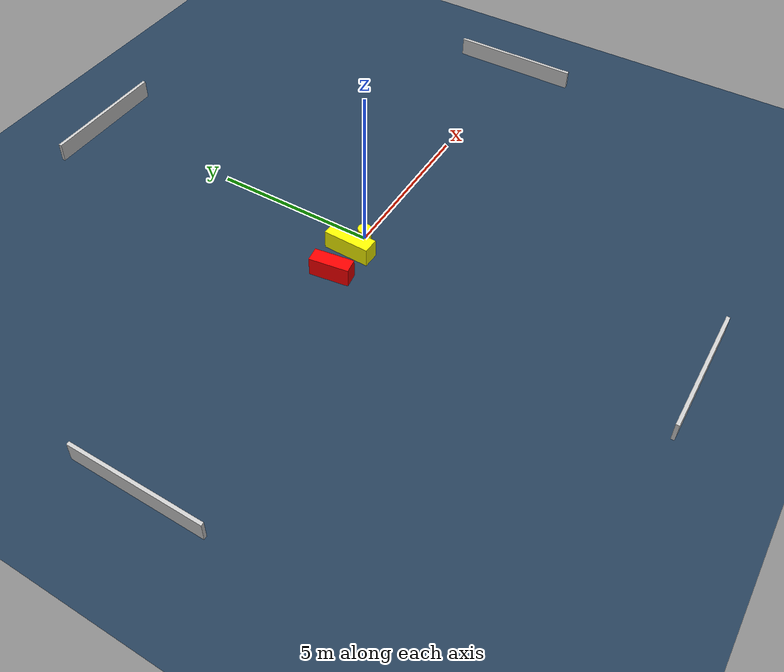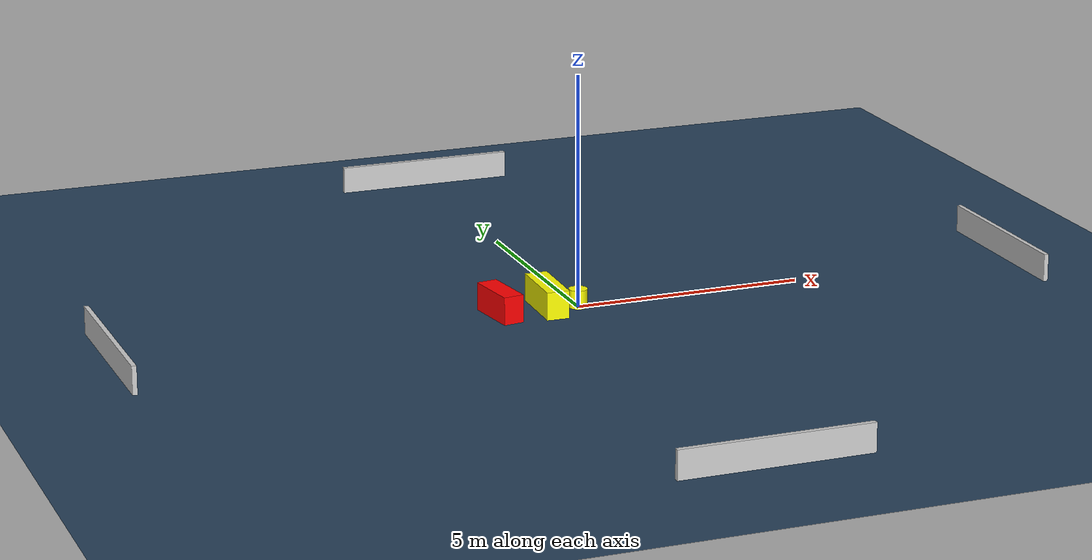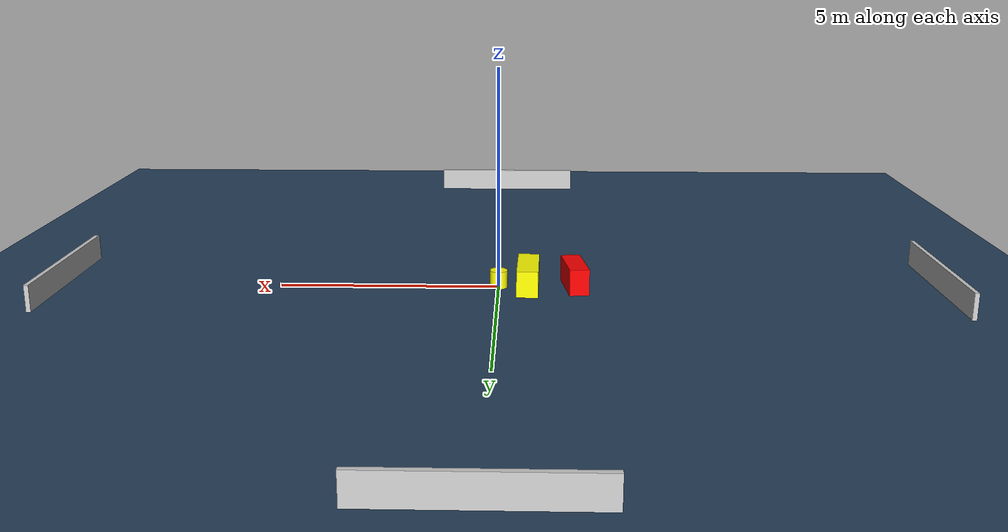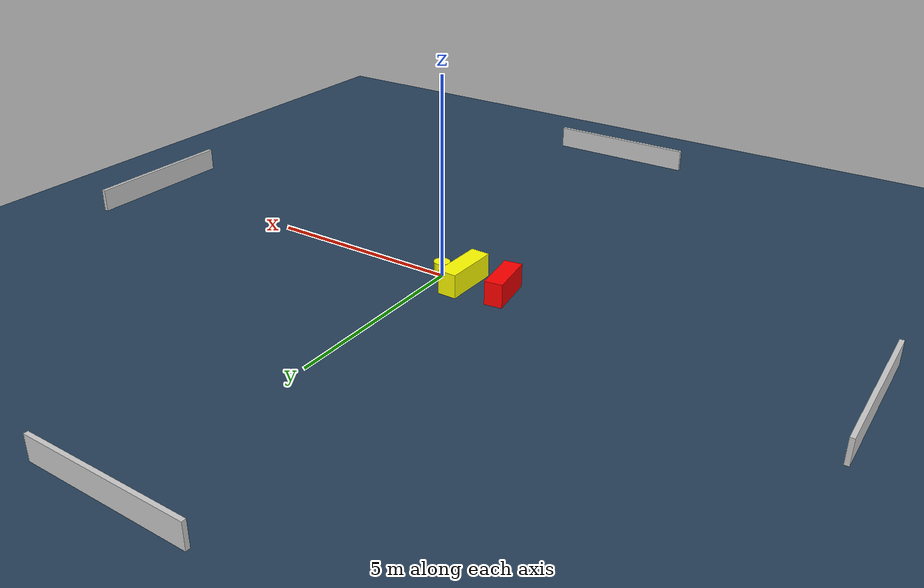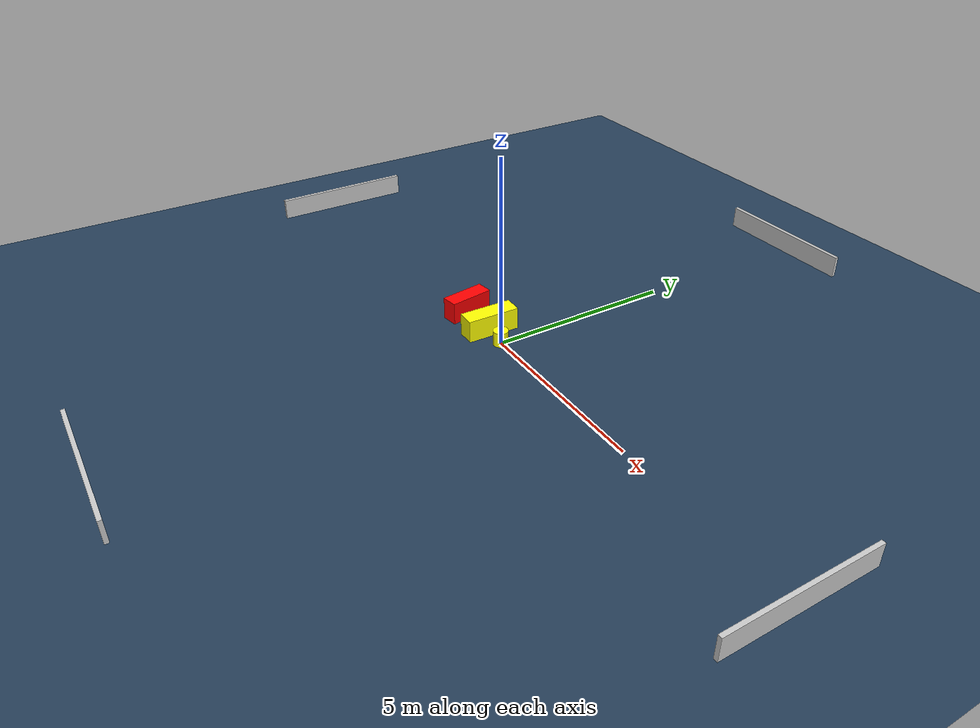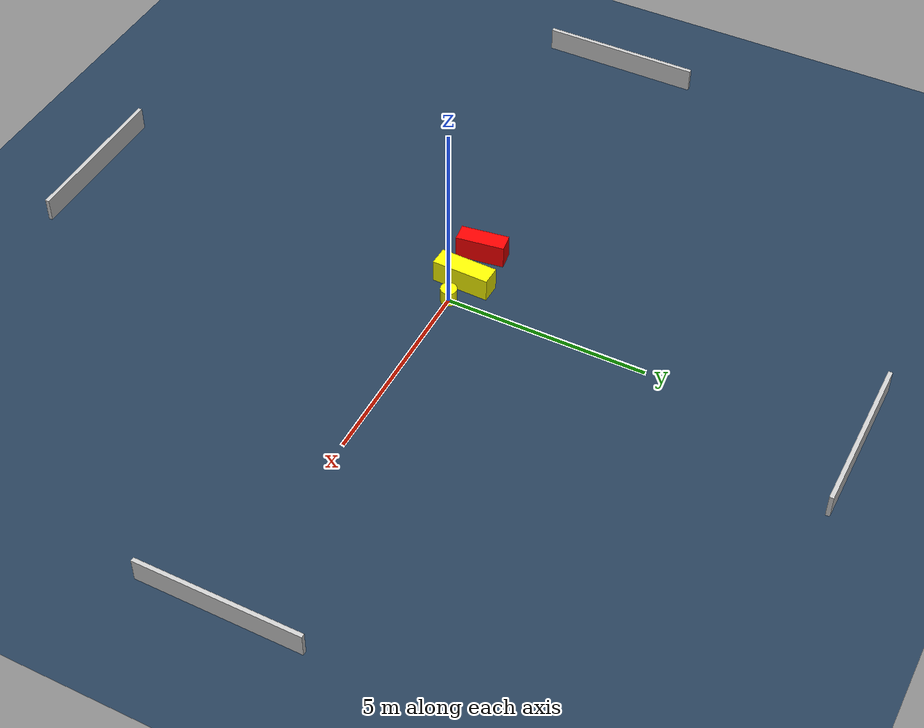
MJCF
<?xml version="1.0" ?>
<mujoco model="generated_environment">
  <option timestep="0.01" integrator="RK4" cone="elliptic"/>
  <default>
    <geom density="1"/>
  </default>
  <asset>
    <texture builtin="gradient" height="3072" name="skybox" rgb1="0.3 0.5 0.7" rgb2="0 0 0" type="skybox" width="512"/>
    <texture builtin="checker" height="300" name="groundplane" rgb1="0.2 0.3 0.4" rgb2="0.1 0.2 0.3" type="2d" width="300"/>
    <material name="groundplane" reflectance="0.2" texrepeat="5 5" texture="groundplane"/>
  </asset>
  <worldbody>
    <light dir="0 0 -1" directional="true" pos="0 0 1.5"/>
    <geom condim="3" friction="0.5 0.005 0.001" material="groundplane" name="floor" pos="0 0 0" size="0 0 0.05" type="plane"/>
    <body name="walls">
      <geom name="wall_1" condim="4" pos="-10.0 0.0 0.3" rgba="0.800000011920929 0.800000011920929 0.800000011920929 1.0" size="0.05 2.0 0.3" type="box"/>
      <geom name="wall_2" condim="4" pos="10.0 0.0 0.3" rgba="0.800000011920929 0.800000011920929 0.800000011920929 1.0" size="0.05 2.0 0.3" type="box"/>
      <geom name="wall_3" condim="4" pos="0.0 -10.0 0.3" rgba="0.800000011920929 0.800000011920929 0.800000011920929 1.0" size="2.0 0.05 0.3" type="box"/>
      <geom name="wall_4" condim="4" pos="0.0 10.0 0.3" rgba="0.800000011920929 0.800000011920929 0.800000011920929 1.0" size="2.0 0.05 0.3" type="box"/>
    </body>
    <body name="robot">
      <joint name="joint_x" type="slide" pos="0 0 0" axis="1 0 0"/>
      <joint name="joint_y" type="slide" pos="0 0 0" axis="0 1 0"/>
      <geom name="robot" type="cylinder" pos="0.0 0.0 0.2" size="0.2 0.2 0.0" mass="5.0" friction="1.0 0.005 0.0001" condim="4" rgba="1.0 1.0 0.0 1.0"/>
    </body>
    <body name="obstacle_1_movable">
      <geom name="obstacle_1_movable" condim="4" pos="-0.6695573563183392 0.07050671829721136 0.3" euler="0 0 88.49810808581029" friction="0.0 0.005 0.001" rgba="1.0 1.0 0.0 1.0" size="0.7090444398272759 0.24157748032883025 0.3" type="box" mass="0.1"/>
      <joint type="free"/>
    </body>
    <body name="obstacle_2_static">
      <geom name="obstacle_2_static" condim="4" pos="-1.7316441155880085 0.012387453970303752 0.3" euler="0 0 188.16204832383897" friction="0.0 0.005 0.001" rgba="1.0 0.0 0.0 1.0" size="0.2219839546477994 0.5968716531593132 0.3" type="box"/>
    </body>
  </worldbody>
  <actuator>
    <motor name="actuator_x" joint="joint_x" gear="1" ctrlrange="-1 1"/>
    <motor name="actuator_y" joint="joint_y" gear="1" ctrlrange="-1 1"/>
  </actuator>
</mujoco>
